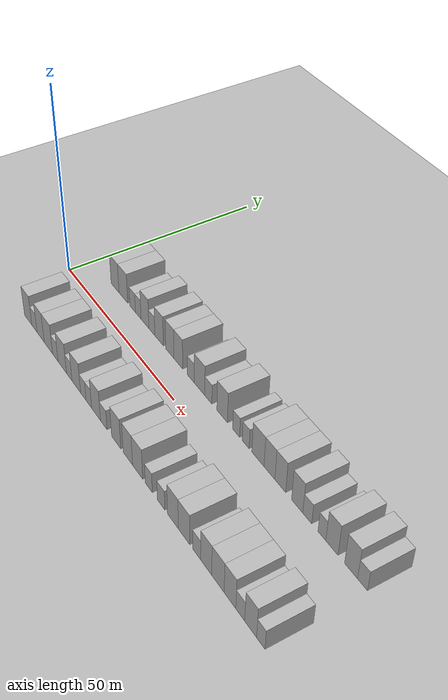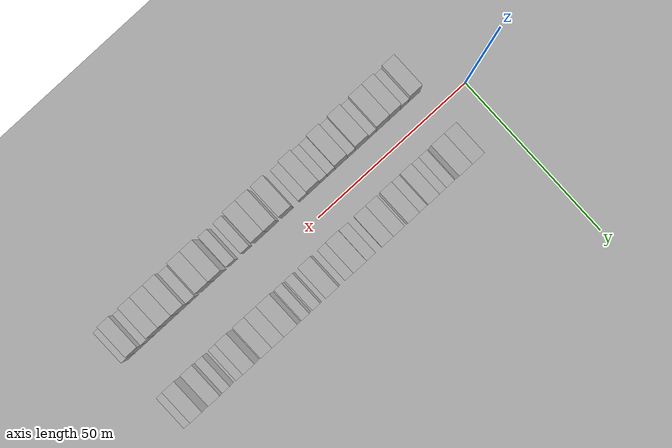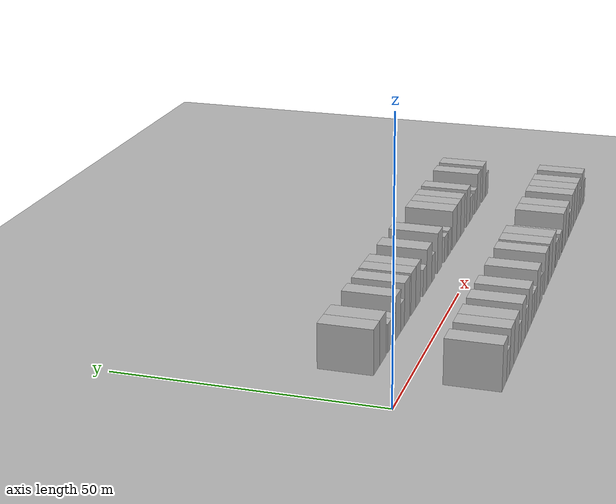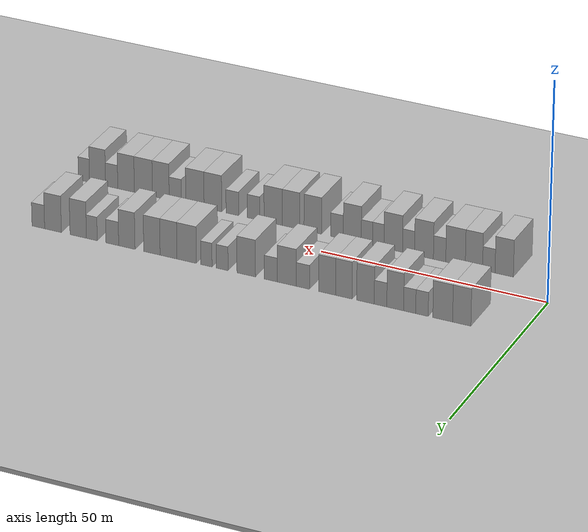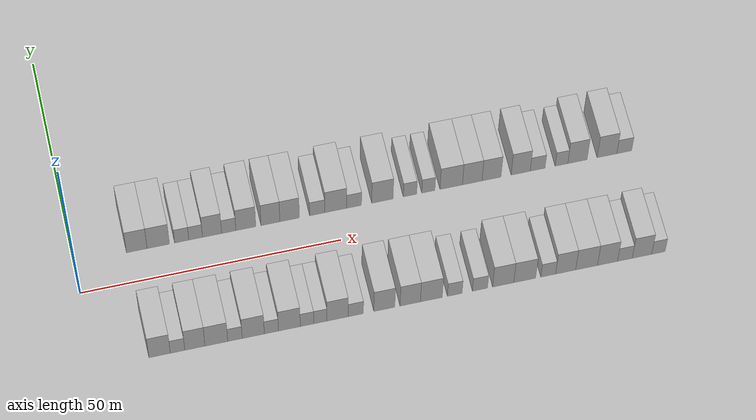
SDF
<sdf version="1.6">
 <world name="default">
  <include><name>ground_plane_1</name><uri>model://HANNAS_ground_plane</uri></include>
  <include>
   <name>ground_plane_2</name>
   <uri>model://HANNAS_ground_plane</uri>
   <pose>100 0 0  0 0 0</pose>
  </include>
  <model name="building_1">
   <static>1</static>
   <pose>11.9787 11.0000 0 0.000000 0.000000 1.570796</pose>
   <link name="link">
    <pose>0 0 4.50 0 0 0</pose>
    <collision name="collision"><geometry><box><size>10.0000 3.9575 9.0000</size></box></geometry></collision>
    <visual name="visual">
     <cast_shadows>0</cast_shadows>
     <geometry><box><size>10.0000 3.9575 9.0000</size></box></geometry>
     <material>
      <script>
       <uri>model://HANNAS_wall/materials/scripts</uri>
       <uri>model://HANNAS_wall/materials/textures</uri>
       <name>vrc/HANNAS_wall</name>
      </script>
     </material>
    </visual>
   </link>
  </model>
  <model name="building_2">
   <static>1</static>
   <pose>16.1000 11.0000 0 0.000000 0.000000 1.570796</pose>
   <link name="link">
    <pose>0 0 4.50 0 0 0</pose>
    <collision name="collision"><geometry><box><size>10.0000 4.2851 9.0000</size></box></geometry></collision>
    <visual name="visual">
     <cast_shadows>0</cast_shadows>
     <geometry><box><size>10.0000 4.2851 9.0000</size></box></geometry>
     <material>
      <script>
       <uri>model://HANNAS_wall/materials/scripts</uri>
       <uri>model://HANNAS_wall/materials/textures</uri>
       <name>vrc/HANNAS_wall</name>
      </script>
     </material>
    </visual>
   </link>
  </model>
  <model name="building_3">
   <static>1</static>
   <pose>20.6056 11.0000 0 0.000000 0.000000 1.570796</pose>
   <link name="link">
    <pose>0 0 3.00 0 0 0</pose>
    <collision name="collision"><geometry><box><size>10.0000 2.7262 6.0000</size></box></geometry></collision>
    <visual name="visual">
     <cast_shadows>0</cast_shadows>
     <geometry><box><size>10.0000 2.7262 6.0000</size></box></geometry>
     <material>
      <script>
       <uri>model://HANNAS_wall/materials/scripts</uri>
       <uri>model://HANNAS_wall/materials/textures</uri>
       <name>vrc/HANNAS_wall</name>
      </script>
     </material>
    </visual>
   </link>
  </model>
  <model name="building_4">
   <static>1</static>
   <pose>23.2815 11.0000 0 0.000000 0.000000 1.570796</pose>
   <link name="link">
    <pose>0 0 3.00 0 0 0</pose>
    <collision name="collision"><geometry><box><size>10.0000 2.6257 6.0000</size></box></geometry></collision>
    <visual name="visual">
     <cast_shadows>0</cast_shadows>
     <geometry><box><size>10.0000 2.6257 6.0000</size></box></geometry>
     <material>
      <script>
       <uri>model://HANNAS_wall/materials/scripts</uri>
       <uri>model://HANNAS_wall/materials/textures</uri>
       <name>vrc/HANNAS_wall</name>
      </script>
     </material>
    </visual>
   </link>
  </model>
  <model name="building_5">
   <static>1</static>
   <pose>26.4376 11.0000 0 0.000000 0.000000 1.570796</pose>
   <link name="link">
    <pose>0 0 4.50 0 0 0</pose>
    <collision name="collision"><geometry><box><size>10.0000 3.6864 9.0000</size></box></geometry></collision>
    <visual name="visual">
     <cast_shadows>0</cast_shadows>
     <geometry><box><size>10.0000 3.6864 9.0000</size></box></geometry>
     <material>
      <script>
       <uri>model://HANNAS_wall/materials/scripts</uri>
       <uri>model://HANNAS_wall/materials/textures</uri>
       <name>vrc/HANNAS_wall</name>
      </script>
     </material>
    </visual>
   </link>
  </model>
  <model name="building_6">
   <static>1</static>
   <pose>29.6558 11.0000 0 0.000000 0.000000 1.570796</pose>
   <link name="link">
    <pose>0 0 3.00 0 0 0</pose>
    <collision name="collision"><geometry><box><size>10.0000 2.7500 6.0000</size></box></geometry></collision>
    <visual name="visual">
     <cast_shadows>0</cast_shadows>
     <geometry><box><size>10.0000 2.7500 6.0000</size></box></geometry>
     <material>
      <script>
       <uri>model://HANNAS_wall/materials/scripts</uri>
       <uri>model://HANNAS_wall/materials/textures</uri>
       <name>vrc/HANNAS_wall</name>
      </script>
     </material>
    </visual>
   </link>
  </model>
  <model name="building_7">
   <static>1</static>
   <pose>32.9546 11.0000 0 0.000000 0.000000 1.570796</pose>
   <link name="link">
    <pose>0 0 4.50 0 0 0</pose>
    <collision name="collision"><geometry><box><size>10.0000 3.8476 9.0000</size></box></geometry></collision>
    <visual name="visual">
     <cast_shadows>0</cast_shadows>
     <geometry><box><size>10.0000 3.8476 9.0000</size></box></geometry>
     <material>
      <script>
       <uri>model://HANNAS_wall/materials/scripts</uri>
       <uri>model://HANNAS_wall/materials/textures</uri>
       <name>vrc/HANNAS_wall</name>
      </script>
     </material>
    </visual>
   </link>
  </model>
  <model name="building_8">
   <static>1</static>
   <pose>37.7054 11.0000 0 0.000000 0.000000 1.570796</pose>
   <link name="link">
    <pose>0 0 4.50 0 0 0</pose>
    <collision name="collision"><geometry><box><size>10.0000 3.6539 9.0000</size></box></geometry></collision>
    <visual name="visual">
     <cast_shadows>0</cast_shadows>
     <geometry><box><size>10.0000 3.6539 9.0000</size></box></geometry>
     <material>
      <script>
       <uri>model://HANNAS_wall/materials/scripts</uri>
       <uri>model://HANNAS_wall/materials/textures</uri>
       <name>vrc/HANNAS_wall</name>
      </script>
     </material>
    </visual>
   </link>
  </model>
  <model name="building_9">
   <static>1</static>
   <pose>41.4139 11.0000 0 0.000000 0.000000 1.570796</pose>
   <link name="link">
    <pose>0 0 4.50 0 0 0</pose>
    <collision name="collision"><geometry><box><size>10.0000 3.7632 9.0000</size></box></geometry></collision>
    <visual name="visual">
     <cast_shadows>0</cast_shadows>
     <geometry><box><size>10.0000 3.7632 9.0000</size></box></geometry>
     <material>
      <script>
       <uri>model://HANNAS_wall/materials/scripts</uri>
       <uri>model://HANNAS_wall/materials/textures</uri>
       <name>vrc/HANNAS_wall</name>
      </script>
     </material>
    </visual>
   </link>
  </model>
  <model name="building_10">
   <static>1</static>
   <pose>46.7614 11.0000 0 0.000000 0.000000 1.570796</pose>
   <link name="link">
    <pose>0 0 3.00 0 0 0</pose>
    <collision name="collision"><geometry><box><size>10.0000 2.9318 6.0000</size></box></geometry></collision>
    <visual name="visual">
     <cast_shadows>0</cast_shadows>
     <geometry><box><size>10.0000 2.9318 6.0000</size></box></geometry>
     <material>
      <script>
       <uri>model://HANNAS_wall/materials/scripts</uri>
       <uri>model://HANNAS_wall/materials/textures</uri>
       <name>vrc/HANNAS_wall</name>
      </script>
     </material>
    </visual>
   </link>
  </model>
  <model name="building_11">
   <static>1</static>
   <pose>50.3703 11.0000 0 0.000000 0.000000 1.570796</pose>
   <link name="link">
    <pose>0 0 4.50 0 0 0</pose>
    <collision name="collision"><geometry><box><size>10.0000 4.2859 9.0000</size></box></geometry></collision>
    <visual name="visual">
     <cast_shadows>0</cast_shadows>
     <geometry><box><size>10.0000 4.2859 9.0000</size></box></geometry>
     <material>
      <script>
       <uri>model://HANNAS_wall/materials/scripts</uri>
       <uri>model://HANNAS_wall/materials/textures</uri>
       <name>vrc/HANNAS_wall</name>
      </script>
     </material>
    </visual>
   </link>
  </model>
  <model name="building_12">
   <static>1</static>
   <pose>53.9348 11.0000 0 0.000000 0.000000 1.570796</pose>
   <link name="link">
    <pose>0 0 3.00 0 0 0</pose>
    <collision name="collision"><geometry><box><size>10.0000 2.8431 6.0000</size></box></geometry></collision>
    <visual name="visual">
     <cast_shadows>0</cast_shadows>
     <geometry><box><size>10.0000 2.8431 6.0000</size></box></geometry>
     <material>
      <script>
       <uri>model://HANNAS_wall/materials/scripts</uri>
       <uri>model://HANNAS_wall/materials/textures</uri>
       <name>vrc/HANNAS_wall</name>
      </script>
     </material>
    </visual>
   </link>
  </model>
  <model name="building_13">
   <static>1</static>
   <pose>59.4314 11.0000 0 0.000000 0.000000 1.570796</pose>
   <link name="link">
    <pose>0 0 4.50 0 0 0</pose>
    <collision name="collision"><geometry><box><size>10.0000 4.1502 9.0000</size></box></geometry></collision>
    <visual name="visual">
     <cast_shadows>0</cast_shadows>
     <geometry><box><size>10.0000 4.1502 9.0000</size></box></geometry>
     <material>
      <script>
       <uri>model://HANNAS_wall/materials/scripts</uri>
       <uri>model://HANNAS_wall/materials/textures</uri>
       <name>vrc/HANNAS_wall</name>
      </script>
     </material>
    </visual>
   </link>
  </model>
  <model name="building_14">
   <static>1</static>
   <pose>64.8158 11.0000 0 0.000000 0.000000 1.570796</pose>
   <link name="link">
    <pose>0 0 3.00 0 0 0</pose>
    <collision name="collision"><geometry><box><size>10.0000 2.6185 6.0000</size></box></geometry></collision>
    <visual name="visual">
     <cast_shadows>0</cast_shadows>
     <geometry><box><size>10.0000 2.6185 6.0000</size></box></geometry>
     <material>
      <script>
       <uri>model://HANNAS_wall/materials/scripts</uri>
       <uri>model://HANNAS_wall/materials/textures</uri>
       <name>vrc/HANNAS_wall</name>
      </script>
     </material>
    </visual>
   </link>
  </model>
  <model name="building_15">
   <static>1</static>
   <pose>68.3980 11.0000 0 0.000000 0.000000 1.570796</pose>
   <link name="link">
    <pose>0 0 3.00 0 0 0</pose>
    <collision name="collision"><geometry><box><size>10.0000 2.5458 6.0000</size></box></geometry></collision>
    <visual name="visual">
     <cast_shadows>0</cast_shadows>
     <geometry><box><size>10.0000 2.5458 6.0000</size></box></geometry>
     <material>
      <script>
       <uri>model://HANNAS_wall/materials/scripts</uri>
       <uri>model://HANNAS_wall/materials/textures</uri>
       <name>vrc/HANNAS_wall</name>
      </script>
     </material>
    </visual>
   </link>
  </model>
  <model name="building_16">
   <static>1</static>
   <pose>72.8727 11.0000 0 0.000000 0.000000 1.570796</pose>
   <link name="link">
    <pose>0 0 4.50 0 0 0</pose>
    <collision name="collision"><geometry><box><size>10.0000 4.4037 9.0000</size></box></geometry></collision>
    <visual name="visual">
     <cast_shadows>0</cast_shadows>
     <geometry><box><size>10.0000 4.4037 9.0000</size></box></geometry>
     <material>
      <script>
       <uri>model://HANNAS_wall/materials/scripts</uri>
       <uri>model://HANNAS_wall/materials/textures</uri>
       <name>vrc/HANNAS_wall</name>
      </script>
     </material>
    </visual>
   </link>
  </model>
  <model name="building_17">
   <static>1</static>
   <pose>76.9914 11.0000 0 0.000000 0.000000 1.570796</pose>
   <link name="link">
    <pose>0 0 4.50 0 0 0</pose>
    <collision name="collision"><geometry><box><size>10.0000 3.8337 9.0000</size></box></geometry></collision>
    <visual name="visual">
     <cast_shadows>0</cast_shadows>
     <geometry><box><size>10.0000 3.8337 9.0000</size></box></geometry>
     <material>
      <script>
       <uri>model://HANNAS_wall/materials/scripts</uri>
       <uri>model://HANNAS_wall/materials/textures</uri>
       <name>vrc/HANNAS_wall</name>
      </script>
     </material>
    </visual>
   </link>
  </model>
  <model name="building_18">
   <static>1</static>
   <pose>80.7675 11.0000 0 0.000000 0.000000 1.570796</pose>
   <link name="link">
    <pose>0 0 4.50 0 0 0</pose>
    <collision name="collision"><geometry><box><size>10.0000 3.7185 9.0000</size></box></geometry></collision>
    <visual name="visual">
     <cast_shadows>0</cast_shadows>
     <geometry><box><size>10.0000 3.7185 9.0000</size></box></geometry>
     <material>
      <script>
       <uri>model://HANNAS_wall/materials/scripts</uri>
       <uri>model://HANNAS_wall/materials/textures</uri>
       <name>vrc/HANNAS_wall</name>
      </script>
     </material>
    </visual>
   </link>
  </model>
  <model name="building_19">
   <static>1</static>
   <pose>86.4992 11.0000 0 0.000000 0.000000 1.570796</pose>
   <link name="link">
    <pose>0 0 4.50 0 0 0</pose>
    <collision name="collision"><geometry><box><size>10.0000 3.7449 9.0000</size></box></geometry></collision>
    <visual name="visual">
     <cast_shadows>0</cast_shadows>
     <geometry><box><size>10.0000 3.7449 9.0000</size></box></geometry>
     <material>
      <script>
       <uri>model://HANNAS_wall/materials/scripts</uri>
       <uri>model://HANNAS_wall/materials/textures</uri>
       <name>vrc/HANNAS_wall</name>
      </script>
     </material>
    </visual>
   </link>
  </model>
  <model name="building_20">
   <static>1</static>
   <pose>89.8305 11.0000 0 0.000000 0.000000 1.570796</pose>
   <link name="link">
    <pose>0 0 3.00 0 0 0</pose>
    <collision name="collision"><geometry><box><size>10.0000 2.9177 6.0000</size></box></geometry></collision>
    <visual name="visual">
     <cast_shadows>0</cast_shadows>
     <geometry><box><size>10.0000 2.9177 6.0000</size></box></geometry>
     <material>
      <script>
       <uri>model://HANNAS_wall/materials/scripts</uri>
       <uri>model://HANNAS_wall/materials/textures</uri>
       <name>vrc/HANNAS_wall</name>
      </script>
     </material>
    </visual>
   </link>
  </model>
  <model name="building_21">
   <static>1</static>
   <pose>94.5370 11.0000 0 0.000000 0.000000 1.570796</pose>
   <link name="link">
    <pose>0 0 3.00 0 0 0</pose>
    <collision name="collision"><geometry><box><size>10.0000 2.4954 6.0000</size></box></geometry></collision>
    <visual name="visual">
     <cast_shadows>0</cast_shadows>
     <geometry><box><size>10.0000 2.4954 6.0000</size></box></geometry>
     <material>
      <script>
       <uri>model://HANNAS_wall/materials/scripts</uri>
       <uri>model://HANNAS_wall/materials/textures</uri>
       <name>vrc/HANNAS_wall</name>
      </script>
     </material>
    </visual>
   </link>
  </model>
  <model name="building_22">
   <static>1</static>
   <pose>97.6801 11.0000 0 0.000000 0.000000 1.570796</pose>
   <link name="link">
    <pose>0 0 4.50 0 0 0</pose>
    <collision name="collision"><geometry><box><size>10.0000 3.7909 9.0000</size></box></geometry></collision>
    <visual name="visual">
     <cast_shadows>0</cast_shadows>
     <geometry><box><size>10.0000 3.7909 9.0000</size></box></geometry>
     <material>
      <script>
       <uri>model://HANNAS_wall/materials/scripts</uri>
       <uri>model://HANNAS_wall/materials/textures</uri>
       <name>vrc/HANNAS_wall</name>
      </script>
     </material>
    </visual>
   </link>
  </model>
  <model name="building_23">
   <static>1</static>
   <pose>103.5225 11.0000 0 0.000000 0.000000 1.570796</pose>
   <link name="link">
    <pose>0 0 4.50 0 0 0</pose>
    <collision name="collision"><geometry><box><size>10.0000 3.8938 9.0000</size></box></geometry></collision>
    <visual name="visual">
     <cast_shadows>0</cast_shadows>
     <geometry><box><size>10.0000 3.8938 9.0000</size></box></geometry>
     <material>
      <script>
       <uri>model://HANNAS_wall/materials/scripts</uri>
       <uri>model://HANNAS_wall/materials/textures</uri>
       <name>vrc/HANNAS_wall</name>
      </script>
     </material>
    </visual>
   </link>
  </model>
  <model name="building_24">
   <static>1</static>
   <pose>106.9337 11.0000 0 0.000000 0.000000 1.570796</pose>
   <link name="link">
    <pose>0 0 3.00 0 0 0</pose>
    <collision name="collision"><geometry><box><size>10.0000 2.9285 6.0000</size></box></geometry></collision>
    <visual name="visual">
     <cast_shadows>0</cast_shadows>
     <geometry><box><size>10.0000 2.9285 6.0000</size></box></geometry>
     <material>
      <script>
       <uri>model://HANNAS_wall/materials/scripts</uri>
       <uri>model://HANNAS_wall/materials/textures</uri>
       <name>vrc/HANNAS_wall</name>
      </script>
     </material>
    </visual>
   </link>
  </model>
  <model name="building_51">
   <static>1</static>
   <pose>12.0151 -11.0000 0 0.000000 0.000000 1.570796</pose>
   <link name="link">
    <pose>0 0 4.50 0 0 0</pose>
    <collision name="collision"><geometry><box><size>10.0000 4.0303 9.0000</size></box></geometry></collision>
    <visual name="visual">
     <cast_shadows>0</cast_shadows>
     <geometry><box><size>10.0000 4.0303 9.0000</size></box></geometry>
     <material>
      <script>
       <uri>model://HANNAS_wall/materials/scripts</uri>
       <uri>model://HANNAS_wall/materials/textures</uri>
       <name>vrc/HANNAS_wall</name>
      </script>
     </material>
    </visual>
   </link>
  </model>
  <model name="building_52">
   <static>1</static>
   <pose>15.4026 -11.0000 0 0.000000 0.000000 1.570796</pose>
   <link name="link">
    <pose>0 0 3.00 0 0 0</pose>
    <collision name="collision"><geometry><box><size>10.0000 2.7446 6.0000</size></box></geometry></collision>
    <visual name="visual">
     <cast_shadows>0</cast_shadows>
     <geometry><box><size>10.0000 2.7446 6.0000</size></box></geometry>
     <material>
      <script>
       <uri>model://HANNAS_wall/materials/scripts</uri>
       <uri>model://HANNAS_wall/materials/textures</uri>
       <name>vrc/HANNAS_wall</name>
      </script>
     </material>
    </visual>
   </link>
  </model>
  <model name="building_53">
   <static>1</static>
   <pose>18.6782 -11.0000 0 0.000000 0.000000 1.570796</pose>
   <link name="link">
    <pose>0 0 4.50 0 0 0</pose>
    <collision name="collision"><geometry><box><size>10.0000 3.8066 9.0000</size></box></geometry></collision>
    <visual name="visual">
     <cast_shadows>0</cast_shadows>
     <geometry><box><size>10.0000 3.8066 9.0000</size></box></geometry>
     <material>
      <script>
       <uri>model://HANNAS_wall/materials/scripts</uri>
       <uri>model://HANNAS_wall/materials/textures</uri>
       <name>vrc/HANNAS_wall</name>
      </script>
     </material>
    </visual>
   </link>
  </model>
  <model name="building_54">
   <static>1</static>
   <pose>22.7406 -11.0000 0 0.000000 0.000000 1.570796</pose>
   <link name="link">
    <pose>0 0 4.50 0 0 0</pose>
    <collision name="collision"><geometry><box><size>10.0000 4.3183 9.0000</size></box></geometry></collision>
    <visual name="visual">
     <cast_shadows>0</cast_shadows>
     <geometry><box><size>10.0000 4.3183 9.0000</size></box></geometry>
     <material>
      <script>
       <uri>model://HANNAS_wall/materials/scripts</uri>
       <uri>model://HANNAS_wall/materials/textures</uri>
       <name>vrc/HANNAS_wall</name>
      </script>
     </material>
    </visual>
   </link>
  </model>
  <model name="building_55">
   <static>1</static>
   <pose>26.2698 -11.0000 0 0.000000 0.000000 1.570796</pose>
   <link name="link">
    <pose>0 0 3.00 0 0 0</pose>
    <collision name="collision"><geometry><box><size>10.0000 2.7400 6.0000</size></box></geometry></collision>
    <visual name="visual">
     <cast_shadows>0</cast_shadows>
     <geometry><box><size>10.0000 2.7400 6.0000</size></box></geometry>
     <material>
      <script>
       <uri>model://HANNAS_wall/materials/scripts</uri>
       <uri>model://HANNAS_wall/materials/textures</uri>
       <name>vrc/HANNAS_wall</name>
      </script>
     </material>
    </visual>
   </link>
  </model>
  <model name="building_56">
   <static>1</static>
   <pose>29.7403 -11.0000 0 0.000000 0.000000 1.570796</pose>
   <link name="link">
    <pose>0 0 4.50 0 0 0</pose>
    <collision name="collision"><geometry><box><size>10.0000 4.2009 9.0000</size></box></geometry></collision>
    <visual name="visual">
     <cast_shadows>0</cast_shadows>
     <geometry><box><size>10.0000 4.2009 9.0000</size></box></geometry>
     <material>
      <script>
       <uri>model://HANNAS_wall/materials/scripts</uri>
       <uri>model://HANNAS_wall/materials/textures</uri>
       <name>vrc/HANNAS_wall</name>
      </script>
     </material>
    </visual>
   </link>
  </model>
  <model name="building_57">
   <static>1</static>
   <pose>33.1793 -11.0000 0 0.000000 0.000000 1.570796</pose>
   <link name="link">
    <pose>0 0 3.00 0 0 0</pose>
    <collision name="collision"><geometry><box><size>10.0000 2.6772 6.0000</size></box></geometry></collision>
    <visual name="visual">
     <cast_shadows>0</cast_shadows>
     <geometry><box><size>10.0000 2.6772 6.0000</size></box></geometry>
     <material>
      <script>
       <uri>model://HANNAS_wall/materials/scripts</uri>
       <uri>model://HANNAS_wall/materials/textures</uri>
       <name>vrc/HANNAS_wall</name>
      </script>
     </material>
    </visual>
   </link>
  </model>
  <model name="building_58">
   <static>1</static>
   <pose>36.5880 -11.0000 0 0.000000 0.000000 1.570796</pose>
   <link name="link">
    <pose>0 0 4.50 0 0 0</pose>
    <collision name="collision"><geometry><box><size>10.0000 4.1402 9.0000</size></box></geometry></collision>
    <visual name="visual">
     <cast_shadows>0</cast_shadows>
     <geometry><box><size>10.0000 4.1402 9.0000</size></box></geometry>
     <material>
      <script>
       <uri>model://HANNAS_wall/materials/scripts</uri>
       <uri>model://HANNAS_wall/materials/textures</uri>
       <name>vrc/HANNAS_wall</name>
      </script>
     </material>
    </visual>
   </link>
  </model>
  <model name="building_59">
   <static>1</static>
   <pose>39.9482 -11.0000 0 0.000000 0.000000 1.570796</pose>
   <link name="link">
    <pose>0 0 3.00 0 0 0</pose>
    <collision name="collision"><geometry><box><size>10.0000 2.5802 6.0000</size></box></geometry></collision>
    <visual name="visual">
     <cast_shadows>0</cast_shadows>
     <geometry><box><size>10.0000 2.5802 6.0000</size></box></geometry>
     <material>
      <script>
       <uri>model://HANNAS_wall/materials/scripts</uri>
       <uri>model://HANNAS_wall/materials/textures</uri>
       <name>vrc/HANNAS_wall</name>
      </script>
     </material>
    </visual>
   </link>
  </model>
  <model name="building_60">
   <static>1</static>
   <pose>42.4960 -11.0000 0 0.000000 0.000000 1.570796</pose>
   <link name="link">
    <pose>0 0 3.00 0 0 0</pose>
    <collision name="collision"><geometry><box><size>10.0000 2.5152 6.0000</size></box></geometry></collision>
    <visual name="visual">
     <cast_shadows>0</cast_shadows>
     <geometry><box><size>10.0000 2.5152 6.0000</size></box></geometry>
     <material>
      <script>
       <uri>model://HANNAS_wall/materials/scripts</uri>
       <uri>model://HANNAS_wall/materials/textures</uri>
       <name>vrc/HANNAS_wall</name>
      </script>
     </material>
    </visual>
   </link>
  </model>
  <model name="building_61">
   <static>1</static>
   <pose>45.7781 -11.0000 0 0.000000 0.000000 1.570796</pose>
   <link name="link">
    <pose>0 0 4.50 0 0 0</pose>
    <collision name="collision"><geometry><box><size>10.0000 4.0490 9.0000</size></box></geometry></collision>
    <visual name="visual">
     <cast_shadows>0</cast_shadows>
     <geometry><box><size>10.0000 4.0490 9.0000</size></box></geometry>
     <material>
      <script>
       <uri>model://HANNAS_wall/materials/scripts</uri>
       <uri>model://HANNAS_wall/materials/textures</uri>
       <name>vrc/HANNAS_wall</name>
      </script>
     </material>
    </visual>
   </link>
  </model>
  <model name="building_62">
   <static>1</static>
   <pose>49.2489 -11.0000 0 0.000000 0.000000 1.570796</pose>
   <link name="link">
    <pose>0 0 3.00 0 0 0</pose>
    <collision name="collision"><geometry><box><size>10.0000 2.8927 6.0000</size></box></geometry></collision>
    <visual name="visual">
     <cast_shadows>0</cast_shadows>
     <geometry><box><size>10.0000 2.8927 6.0000</size></box></geometry>
     <material>
      <script>
       <uri>model://HANNAS_wall/materials/scripts</uri>
       <uri>model://HANNAS_wall/materials/textures</uri>
       <name>vrc/HANNAS_wall</name>
      </script>
     </material>
    </visual>
   </link>
  </model>
  <model name="building_63">
   <static>1</static>
   <pose>54.7015 -11.0000 0 0.000000 0.000000 1.570796</pose>
   <link name="link">
    <pose>0 0 4.50 0 0 0</pose>
    <collision name="collision"><geometry><box><size>10.0000 4.0124 9.0000</size></box></geometry></collision>
    <visual name="visual">
     <cast_shadows>0</cast_shadows>
     <geometry><box><size>10.0000 4.0124 9.0000</size></box></geometry>
     <material>
      <script>
       <uri>model://HANNAS_wall/materials/scripts</uri>
       <uri>model://HANNAS_wall/materials/textures</uri>
       <name>vrc/HANNAS_wall</name>
      </script>
     </material>
    </visual>
   </link>
  </model>
  <model name="building_64">
   <static>1</static>
   <pose>59.6668 -11.0000 0 0.000000 0.000000 1.570796</pose>
   <link name="link">
    <pose>0 0 4.50 0 0 0</pose>
    <collision name="collision"><geometry><box><size>10.0000 3.9182 9.0000</size></box></geometry></collision>
    <visual name="visual">
     <cast_shadows>0</cast_shadows>
     <geometry><box><size>10.0000 3.9182 9.0000</size></box></geometry>
     <material>
      <script>
       <uri>model://HANNAS_wall/materials/scripts</uri>
       <uri>model://HANNAS_wall/materials/textures</uri>
       <name>vrc/HANNAS_wall</name>
      </script>
     </material>
    </visual>
   </link>
  </model>
  <model name="building_65">
   <static>1</static>
   <pose>63.7171 -11.0000 0 0.000000 0.000000 1.570796</pose>
   <link name="link">
    <pose>0 0 4.50 0 0 0</pose>
    <collision name="collision"><geometry><box><size>10.0000 4.1824 9.0000</size></box></geometry></collision>
    <visual name="visual">
     <cast_shadows>0</cast_shadows>
     <geometry><box><size>10.0000 4.1824 9.0000</size></box></geometry>
     <material>
      <script>
       <uri>model://HANNAS_wall/materials/scripts</uri>
       <uri>model://HANNAS_wall/materials/textures</uri>
       <name>vrc/HANNAS_wall</name>
      </script>
     </material>
    </visual>
   </link>
  </model>
  <model name="building_66">
   <static>1</static>
   <pose>68.2182 -11.0000 0 0.000000 0.000000 1.570796</pose>
   <link name="link">
    <pose>0 0 3.00 0 0 0</pose>
    <collision name="collision"><geometry><box><size>10.0000 2.8198 6.0000</size></box></geometry></collision>
    <visual name="visual">
     <cast_shadows>0</cast_shadows>
     <geometry><box><size>10.0000 2.8198 6.0000</size></box></geometry>
     <material>
      <script>
       <uri>model://HANNAS_wall/materials/scripts</uri>
       <uri>model://HANNAS_wall/materials/textures</uri>
       <name>vrc/HANNAS_wall</name>
      </script>
     </material>
    </visual>
   </link>
  </model>
  <model name="building_67">
   <static>1</static>
   <pose>73.0759 -11.0000 0 0.000000 0.000000 1.570796</pose>
   <link name="link">
    <pose>0 0 3.00 0 0 0</pose>
    <collision name="collision"><geometry><box><size>10.0000 2.8956 6.0000</size></box></geometry></collision>
    <visual name="visual">
     <cast_shadows>0</cast_shadows>
     <geometry><box><size>10.0000 2.8956 6.0000</size></box></geometry>
     <material>
      <script>
       <uri>model://HANNAS_wall/materials/scripts</uri>
       <uri>model://HANNAS_wall/materials/textures</uri>
       <name>vrc/HANNAS_wall</name>
      </script>
     </material>
    </visual>
   </link>
  </model>
  <model name="building_68">
   <static>1</static>
   <pose>77.5596 -11.0000 0 0.000000 0.000000 1.570796</pose>
   <link name="link">
    <pose>0 0 4.50 0 0 0</pose>
    <collision name="collision"><geometry><box><size>10.0000 4.0720 9.0000</size></box></geometry></collision>
    <visual name="visual">
     <cast_shadows>0</cast_shadows>
     <geometry><box><size>10.0000 4.0720 9.0000</size></box></geometry>
     <material>
      <script>
       <uri>model://HANNAS_wall/materials/scripts</uri>
       <uri>model://HANNAS_wall/materials/textures</uri>
       <name>vrc/HANNAS_wall</name>
      </script>
     </material>
    </visual>
   </link>
  </model>
  <model name="building_69">
   <static>1</static>
   <pose>81.7075 -11.0000 0 0.000000 0.000000 1.570796</pose>
   <link name="link">
    <pose>0 0 4.50 0 0 0</pose>
    <collision name="collision"><geometry><box><size>10.0000 4.2238 9.0000</size></box></geometry></collision>
    <visual name="visual">
     <cast_shadows>0</cast_shadows>
     <geometry><box><size>10.0000 4.2238 9.0000</size></box></geometry>
     <material>
      <script>
       <uri>model://HANNAS_wall/materials/scripts</uri>
       <uri>model://HANNAS_wall/materials/textures</uri>
       <name>vrc/HANNAS_wall</name>
      </script>
     </material>
    </visual>
   </link>
  </model>
  <model name="building_70">
   <static>1</static>
   <pose>86.2498 -11.0000 0 0.000000 0.000000 1.570796</pose>
   <link name="link">
    <pose>0 0 3.00 0 0 0</pose>
    <collision name="collision"><geometry><box><size>10.0000 2.8609 6.0000</size></box></geometry></collision>
    <visual name="visual">
     <cast_shadows>0</cast_shadows>
     <geometry><box><size>10.0000 2.8609 6.0000</size></box></geometry>
     <material>
      <script>
       <uri>model://HANNAS_wall/materials/scripts</uri>
       <uri>model://HANNAS_wall/materials/textures</uri>
       <name>vrc/HANNAS_wall</name>
      </script>
     </material>
    </visual>
   </link>
  </model>
  <model name="building_71">
   <static>1</static>
   <pose>89.6246 -11.0000 0 0.000000 0.000000 1.570796</pose>
   <link name="link">
    <pose>0 0 4.50 0 0 0</pose>
    <collision name="collision"><geometry><box><size>10.0000 3.8886 9.0000</size></box></geometry></collision>
    <visual name="visual">
     <cast_shadows>0</cast_shadows>
     <geometry><box><size>10.0000 3.8886 9.0000</size></box></geometry>
     <material>
      <script>
       <uri>model://HANNAS_wall/materials/scripts</uri>
       <uri>model://HANNAS_wall/materials/textures</uri>
       <name>vrc/HANNAS_wall</name>
      </script>
     </material>
    </visual>
   </link>
  </model>
  <model name="building_72">
   <static>1</static>
   <pose>93.6829 -11.0000 0 0.000000 0.000000 1.570796</pose>
   <link name="link">
    <pose>0 0 4.50 0 0 0</pose>
    <collision name="collision"><geometry><box><size>10.0000 4.2281 9.0000</size></box></geometry></collision>
    <visual name="visual">
     <cast_shadows>0</cast_shadows>
     <geometry><box><size>10.0000 4.2281 9.0000</size></box></geometry>
     <material>
      <script>
       <uri>model://HANNAS_wall/materials/scripts</uri>
       <uri>model://HANNAS_wall/materials/textures</uri>
       <name>vrc/HANNAS_wall</name>
      </script>
     </material>
    </visual>
   </link>
  </model>
  <model name="building_73">
   <static>1</static>
   <pose>97.7416 -11.0000 0 0.000000 0.000000 1.570796</pose>
   <link name="link">
    <pose>0 0 4.50 0 0 0</pose>
    <collision name="collision"><geometry><box><size>10.0000 3.8893 9.0000</size></box></geometry></collision>
    <visual name="visual">
     <cast_shadows>0</cast_shadows>
     <geometry><box><size>10.0000 3.8893 9.0000</size></box></geometry>
     <material>
      <script>
       <uri>model://HANNAS_wall/materials/scripts</uri>
       <uri>model://HANNAS_wall/materials/textures</uri>
       <name>vrc/HANNAS_wall</name>
      </script>
     </material>
    </visual>
   </link>
  </model>
  <model name="building_74">
   <static>1</static>
   <pose>101.1176 -11.0000 0 0.000000 0.000000 1.570796</pose>
   <link name="link">
    <pose>0 0 3.00 0 0 0</pose>
    <collision name="collision"><geometry><box><size>10.0000 2.8628 6.0000</size></box></geometry></collision>
    <visual name="visual">
     <cast_shadows>0</cast_shadows>
     <geometry><box><size>10.0000 2.8628 6.0000</size></box></geometry>
     <material>
      <script>
       <uri>model://HANNAS_wall/materials/scripts</uri>
       <uri>model://HANNAS_wall/materials/textures</uri>
       <name>vrc/HANNAS_wall</name>
      </script>
     </material>
    </visual>
   </link>
  </model>
  <model name="building_75">
   <static>1</static>
   <pose>104.4398 -11.0000 0 0.000000 0.000000 1.570796</pose>
   <link name="link">
    <pose>0 0 4.50 0 0 0</pose>
    <collision name="collision"><geometry><box><size>10.0000 3.7815 9.0000</size></box></geometry></collision>
    <visual name="visual">
     <cast_shadows>0</cast_shadows>
     <geometry><box><size>10.0000 3.7815 9.0000</size></box></geometry>
     <material>
      <script>
       <uri>model://HANNAS_wall/materials/scripts</uri>
       <uri>model://HANNAS_wall/materials/textures</uri>
       <name>vrc/HANNAS_wall</name>
      </script>
     </material>
    </visual>
   </link>
  </model>
  <model name="building_76">
   <static>1</static>
   <pose>107.6356 -11.0000 0 0.000000 0.000000 1.570796</pose>
   <link name="link">
    <pose>0 0 3.00 0 0 0</pose>
    <collision name="collision"><geometry><box><size>10.0000 2.6102 6.0000</size></box></geometry></collision>
    <visual name="visual">
     <cast_shadows>0</cast_shadows>
     <geometry><box><size>10.0000 2.6102 6.0000</size></box></geometry>
     <material>
      <script>
       <uri>model://HANNAS_wall/materials/scripts</uri>
       <uri>model://HANNAS_wall/materials/textures</uri>
       <name>vrc/HANNAS_wall</name>
      </script>
     </material>
    </visual>
   </link>
  </model>
 </world>
</sdf>
